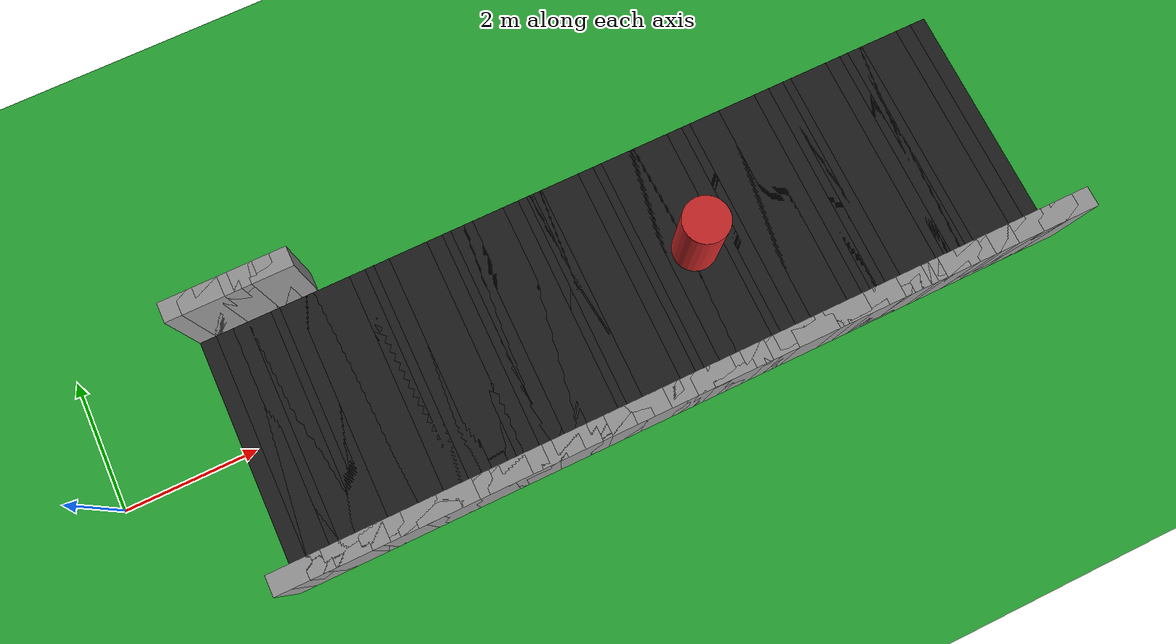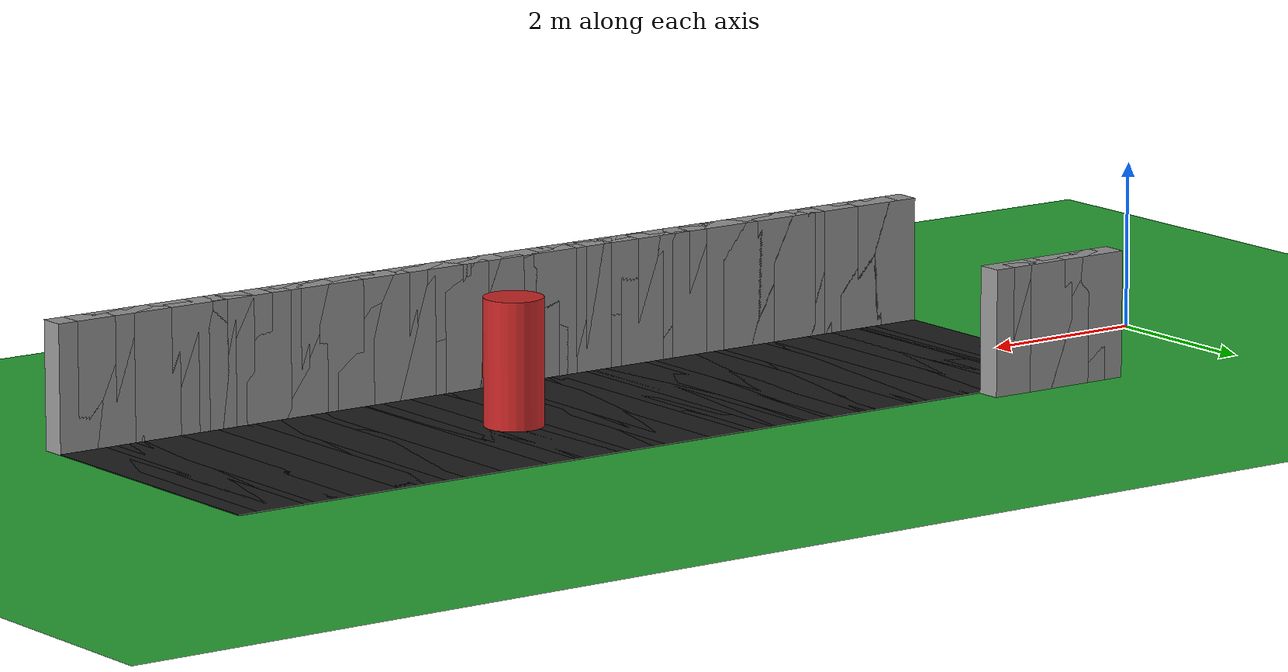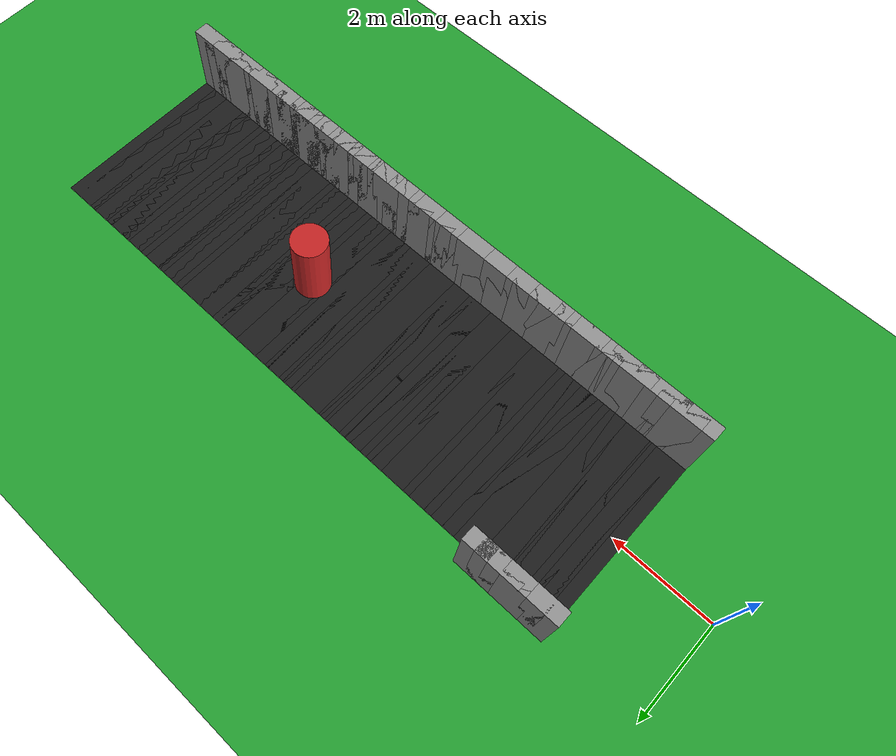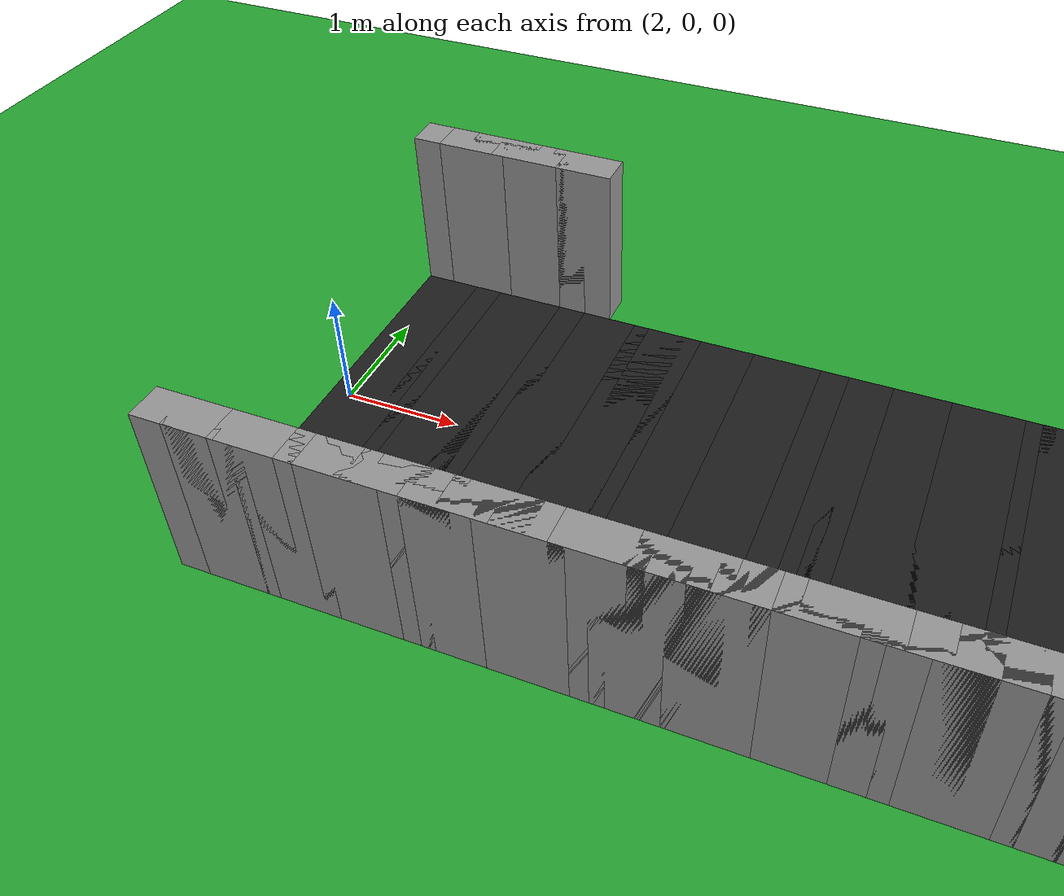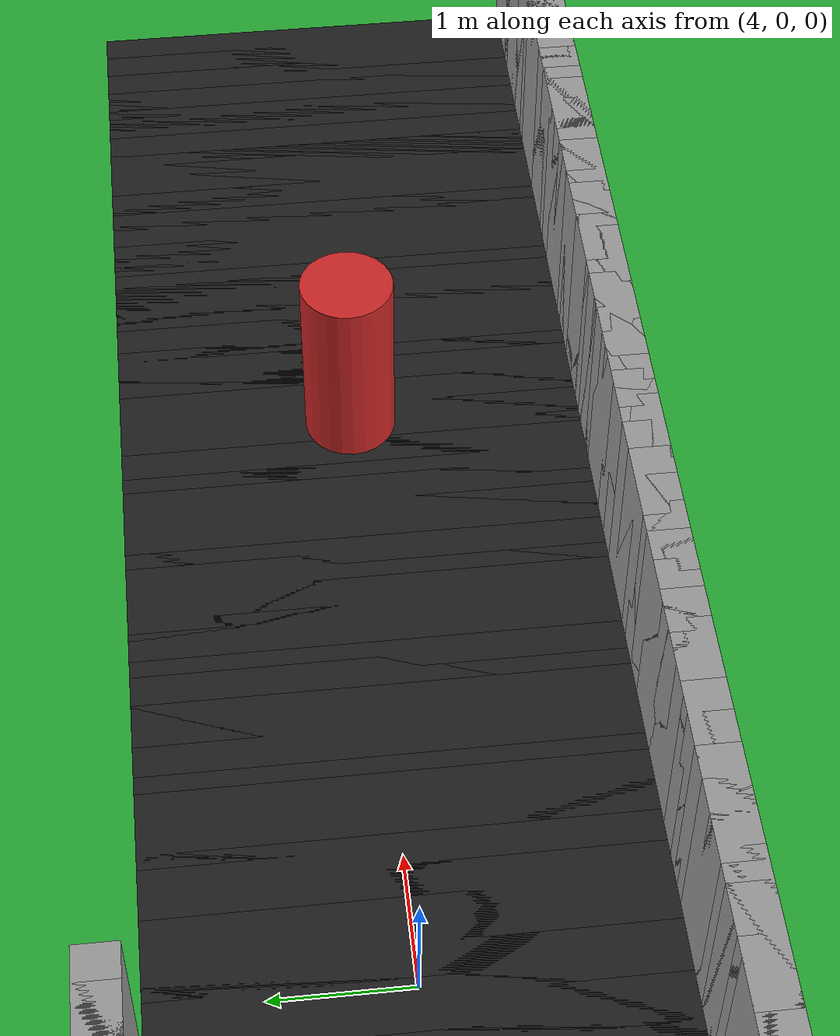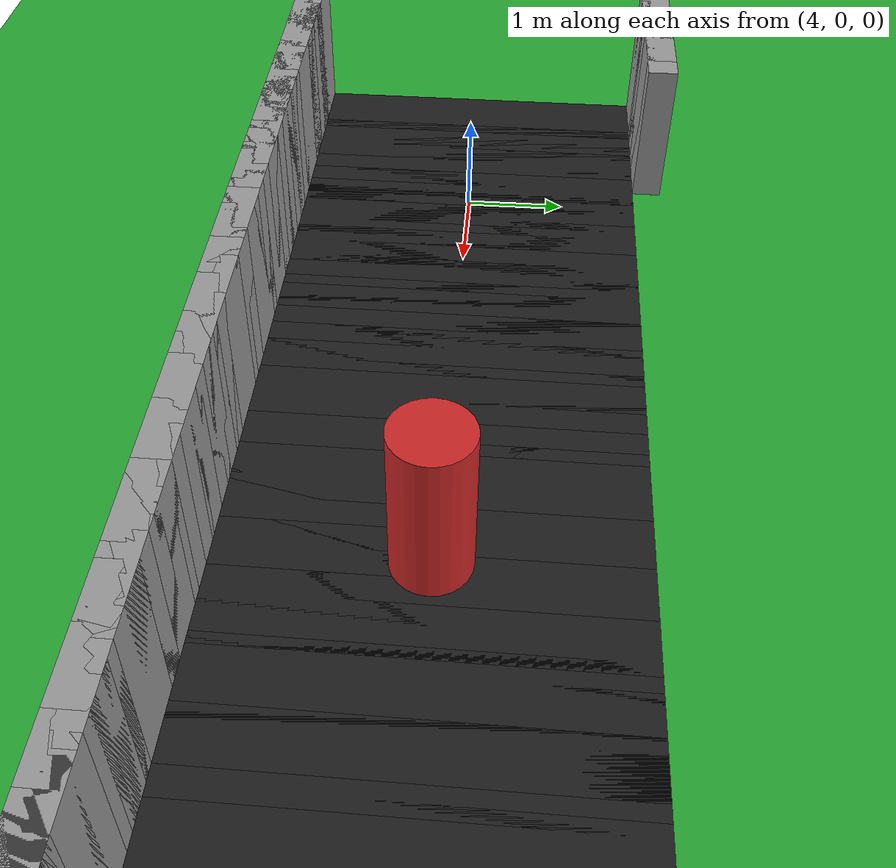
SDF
<sdf version="1.6">
 <world name="obstacle_tight">
  <include><uri>model://sun</uri></include>
  <model name="ground_plane">
   <static>true</static>
   <link name="link">
    <collision name="collision">
     <surface><friction><ode><mu>100</mu><mu2>50</mu2></ode></friction></surface>
     <geometry><plane><normal>0 0 1</normal><size>120 120</size></plane></geometry>
    </collision>
    <visual name="visual">
     <geometry><plane><normal>0 0 1</normal><size>120 120</size></plane></geometry>
     <material>
      <script><uri>file://media/materials/scripts/gazebo.material</uri><name>Gazebo/Green</name></script>
     </material>
    </visual>
   </link>
  </model>
  <model name="asphalt_8">
   <static>true</static>
   <pose>2.125 0.000 0.005 0 0 0.00000</pose>
   <link name="link">
    <visual name="visual">
     <geometry><box><size>0.610 3.600 0.010</size></box></geometry>
     <material>
      <script><uri>file://media/materials/scripts/gazebo.material</uri><name>Gazebo/Black</name></script>
     </material>
    </visual>
   </link>
  </model>
  <model name="curbL_8">
   <static>true</static>
   <pose>2.125 1.950 0.750 0 0 0.00000</pose>
   <link name="link">
    <collision name="collision"><geometry><box><size>0.610 0.300 1.500</size></box></geometry></collision>
    <visual name="visual">
     <geometry><box><size>0.610 0.300 1.500</size></box></geometry>
     <material>
      <script><uri>file://media/materials/scripts/gazebo.material</uri><name>Gazebo/Grey</name></script>
     </material>
    </visual>
   </link>
  </model>
  <model name="curbR_8">
   <static>true</static>
   <pose>2.125 -1.950 0.750 0 0 0.00000</pose>
   <link name="link">
    <collision name="collision"><geometry><box><size>0.610 0.300 1.500</size></box></geometry></collision>
    <visual name="visual">
     <geometry><box><size>0.610 0.300 1.500</size></box></geometry>
     <material>
      <script><uri>file://media/materials/scripts/gazebo.material</uri><name>Gazebo/Grey</name></script>
     </material>
    </visual>
   </link>
  </model>
  <model name="asphalt_9">
   <static>true</static>
   <pose>2.375 0.000 0.005 0 0 0.00000</pose>
   <link name="link">
    <visual name="visual">
     <geometry><box><size>0.610 3.600 0.010</size></box></geometry>
     <material>
      <script><uri>file://media/materials/scripts/gazebo.material</uri><name>Gazebo/Black</name></script>
     </material>
    </visual>
   </link>
  </model>
  <model name="curbL_9">
   <static>true</static>
   <pose>2.375 1.950 0.750 0 0 0.00000</pose>
   <link name="link">
    <collision name="collision"><geometry><box><size>0.610 0.300 1.500</size></box></geometry></collision>
    <visual name="visual">
     <geometry><box><size>0.610 0.300 1.500</size></box></geometry>
     <material>
      <script><uri>file://media/materials/scripts/gazebo.material</uri><name>Gazebo/Grey</name></script>
     </material>
    </visual>
   </link>
  </model>
  <model name="curbR_9">
   <static>true</static>
   <pose>2.375 -1.950 0.750 0 0 0.00000</pose>
   <link name="link">
    <collision name="collision"><geometry><box><size>0.610 0.300 1.500</size></box></geometry></collision>
    <visual name="visual">
     <geometry><box><size>0.610 0.300 1.500</size></box></geometry>
     <material>
      <script><uri>file://media/materials/scripts/gazebo.material</uri><name>Gazebo/Grey</name></script>
     </material>
    </visual>
   </link>
  </model>
  <model name="asphalt_10">
   <static>true</static>
   <pose>2.625 0.000 0.005 0 0 0.00000</pose>
   <link name="link">
    <visual name="visual">
     <geometry><box><size>0.610 3.600 0.010</size></box></geometry>
     <material>
      <script><uri>file://media/materials/scripts/gazebo.material</uri><name>Gazebo/Black</name></script>
     </material>
    </visual>
   </link>
  </model>
  <model name="curbL_10">
   <static>true</static>
   <pose>2.625 1.950 0.750 0 0 0.00000</pose>
   <link name="link">
    <collision name="collision"><geometry><box><size>0.610 0.300 1.500</size></box></geometry></collision>
    <visual name="visual">
     <geometry><box><size>0.610 0.300 1.500</size></box></geometry>
     <material>
      <script><uri>file://media/materials/scripts/gazebo.material</uri><name>Gazebo/Grey</name></script>
     </material>
    </visual>
   </link>
  </model>
  <model name="curbR_10">
   <static>true</static>
   <pose>2.625 -1.950 0.750 0 0 0.00000</pose>
   <link name="link">
    <collision name="collision"><geometry><box><size>0.610 0.300 1.500</size></box></geometry></collision>
    <visual name="visual">
     <geometry><box><size>0.610 0.300 1.500</size></box></geometry>
     <material>
      <script><uri>file://media/materials/scripts/gazebo.material</uri><name>Gazebo/Grey</name></script>
     </material>
    </visual>
   </link>
  </model>
  <model name="asphalt_11">
   <static>true</static>
   <pose>2.875 0.000 0.005 0 0 0.00000</pose>
   <link name="link">
    <visual name="visual">
     <geometry><box><size>0.610 3.600 0.010</size></box></geometry>
     <material>
      <script><uri>file://media/materials/scripts/gazebo.material</uri><name>Gazebo/Black</name></script>
     </material>
    </visual>
   </link>
  </model>
  <model name="curbL_11">
   <static>true</static>
   <pose>2.875 1.950 0.750 0 0 0.00000</pose>
   <link name="link">
    <collision name="collision"><geometry><box><size>0.610 0.300 1.500</size></box></geometry></collision>
    <visual name="visual">
     <geometry><box><size>0.610 0.300 1.500</size></box></geometry>
     <material>
      <script><uri>file://media/materials/scripts/gazebo.material</uri><name>Gazebo/Grey</name></script>
     </material>
    </visual>
   </link>
  </model>
  <model name="curbR_11">
   <static>true</static>
   <pose>2.875 -1.950 0.750 0 0 0.00000</pose>
   <link name="link">
    <collision name="collision"><geometry><box><size>0.610 0.300 1.500</size></box></geometry></collision>
    <visual name="visual">
     <geometry><box><size>0.610 0.300 1.500</size></box></geometry>
     <material>
      <script><uri>file://media/materials/scripts/gazebo.material</uri><name>Gazebo/Grey</name></script>
     </material>
    </visual>
   </link>
  </model>
  <model name="asphalt_12">
   <static>true</static>
   <pose>3.125 0.000 0.005 0 0 0.00000</pose>
   <link name="link">
    <visual name="visual">
     <geometry><box><size>0.610 3.600 0.010</size></box></geometry>
     <material>
      <script><uri>file://media/materials/scripts/gazebo.material</uri><name>Gazebo/Black</name></script>
     </material>
    </visual>
   </link>
  </model>
  <model name="curbL_12">
   <static>true</static>
   <pose>3.125 1.950 0.750 0 0 0.00000</pose>
   <link name="link">
    <collision name="collision"><geometry><box><size>0.610 0.300 1.500</size></box></geometry></collision>
    <visual name="visual">
     <geometry><box><size>0.610 0.300 1.500</size></box></geometry>
     <material>
      <script><uri>file://media/materials/scripts/gazebo.material</uri><name>Gazebo/Grey</name></script>
     </material>
    </visual>
   </link>
  </model>
  <model name="curbR_12">
   <static>true</static>
   <pose>3.125 -1.950 0.750 0 0 0.00000</pose>
   <link name="link">
    <collision name="collision"><geometry><box><size>0.610 0.300 1.500</size></box></geometry></collision>
    <visual name="visual">
     <geometry><box><size>0.610 0.300 1.500</size></box></geometry>
     <material>
      <script><uri>file://media/materials/scripts/gazebo.material</uri><name>Gazebo/Grey</name></script>
     </material>
    </visual>
   </link>
  </model>
  <model name="asphalt_13">
   <static>true</static>
   <pose>3.375 0.000 0.005 0 0 0.00000</pose>
   <link name="link">
    <visual name="visual">
     <geometry><box><size>0.610 3.600 0.010</size></box></geometry>
     <material>
      <script><uri>file://media/materials/scripts/gazebo.material</uri><name>Gazebo/Black</name></script>
     </material>
    </visual>
   </link>
  </model>
  <model name="curbL_13">
   <static>true</static>
   <pose>3.375 1.950 0.750 0 0 0.00000</pose>
   <link name="link">
    <collision name="collision"><geometry><box><size>0.610 0.300 1.500</size></box></geometry></collision>
    <visual name="visual">
     <geometry><box><size>0.610 0.300 1.500</size></box></geometry>
     <material>
      <script><uri>file://media/materials/scripts/gazebo.material</uri><name>Gazebo/Grey</name></script>
     </material>
    </visual>
   </link>
  </model>
  <model name="curbR_13">
   <static>true</static>
   <pose>3.375 -1.950 0.750 0 0 0.00000</pose>
   <link name="link">
    <collision name="collision"><geometry><box><size>0.610 0.300 1.500</size></box></geometry></collision>
    <visual name="visual">
     <geometry><box><size>0.610 0.300 1.500</size></box></geometry>
     <material>
      <script><uri>file://media/materials/scripts/gazebo.material</uri><name>Gazebo/Grey</name></script>
     </material>
    </visual>
   </link>
  </model>
  <model name="asphalt_14">
   <static>true</static>
   <pose>3.625 0.000 0.005 0 0 0.00000</pose>
   <link name="link">
    <visual name="visual">
     <geometry><box><size>0.610 3.600 0.010</size></box></geometry>
     <material>
      <script><uri>file://media/materials/scripts/gazebo.material</uri><name>Gazebo/Black</name></script>
     </material>
    </visual>
   </link>
  </model>
  <model name="curbR_14">
   <static>true</static>
   <pose>3.625 -1.950 0.750 0 0 0.00000</pose>
   <link name="link">
    <collision name="collision"><geometry><box><size>0.610 0.300 1.500</size></box></geometry></collision>
    <visual name="visual">
     <geometry><box><size>0.610 0.300 1.500</size></box></geometry>
     <material>
      <script><uri>file://media/materials/scripts/gazebo.material</uri><name>Gazebo/Grey</name></script>
     </material>
    </visual>
   </link>
  </model>
  <model name="asphalt_15">
   <static>true</static>
   <pose>3.875 0.000 0.005 0 0 0.00000</pose>
   <link name="link">
    <visual name="visual">
     <geometry><box><size>0.610 3.600 0.010</size></box></geometry>
     <material>
      <script><uri>file://media/materials/scripts/gazebo.material</uri><name>Gazebo/Black</name></script>
     </material>
    </visual>
   </link>
  </model>
  <model name="curbR_15">
   <static>true</static>
   <pose>3.875 -1.950 0.750 0 0 0.00000</pose>
   <link name="link">
    <collision name="collision"><geometry><box><size>0.610 0.300 1.500</size></box></geometry></collision>
    <visual name="visual">
     <geometry><box><size>0.610 0.300 1.500</size></box></geometry>
     <material>
      <script><uri>file://media/materials/scripts/gazebo.material</uri><name>Gazebo/Grey</name></script>
     </material>
    </visual>
   </link>
  </model>
  <model name="asphalt_16">
   <static>true</static>
   <pose>4.125 0.000 0.005 0 0 0.00000</pose>
   <link name="link">
    <visual name="visual">
     <geometry><box><size>0.610 3.600 0.010</size></box></geometry>
     <material>
      <script><uri>file://media/materials/scripts/gazebo.material</uri><name>Gazebo/Black</name></script>
     </material>
    </visual>
   </link>
  </model>
  <model name="curbR_16">
   <static>true</static>
   <pose>4.125 -1.950 0.750 0 0 0.00000</pose>
   <link name="link">
    <collision name="collision"><geometry><box><size>0.610 0.300 1.500</size></box></geometry></collision>
    <visual name="visual">
     <geometry><box><size>0.610 0.300 1.500</size></box></geometry>
     <material>
      <script><uri>file://media/materials/scripts/gazebo.material</uri><name>Gazebo/Grey</name></script>
     </material>
    </visual>
   </link>
  </model>
  <model name="asphalt_17">
   <static>true</static>
   <pose>4.375 0.000 0.005 0 0 0.00000</pose>
   <link name="link">
    <visual name="visual">
     <geometry><box><size>0.610 3.600 0.010</size></box></geometry>
     <material>
      <script><uri>file://media/materials/scripts/gazebo.material</uri><name>Gazebo/Black</name></script>
     </material>
    </visual>
   </link>
  </model>
  <model name="curbR_17">
   <static>true</static>
   <pose>4.375 -1.950 0.750 0 0 0.00000</pose>
   <link name="link">
    <collision name="collision"><geometry><box><size>0.610 0.300 1.500</size></box></geometry></collision>
    <visual name="visual">
     <geometry><box><size>0.610 0.300 1.500</size></box></geometry>
     <material>
      <script><uri>file://media/materials/scripts/gazebo.material</uri><name>Gazebo/Grey</name></script>
     </material>
    </visual>
   </link>
  </model>
  <model name="asphalt_18">
   <static>true</static>
   <pose>4.625 0.000 0.005 0 0 0.00000</pose>
   <link name="link">
    <visual name="visual">
     <geometry><box><size>0.610 3.600 0.010</size></box></geometry>
     <material>
      <script><uri>file://media/materials/scripts/gazebo.material</uri><name>Gazebo/Black</name></script>
     </material>
    </visual>
   </link>
  </model>
  <model name="curbR_18">
   <static>true</static>
   <pose>4.625 -1.950 0.750 0 0 0.00000</pose>
   <link name="link">
    <collision name="collision"><geometry><box><size>0.610 0.300 1.500</size></box></geometry></collision>
    <visual name="visual">
     <geometry><box><size>0.610 0.300 1.500</size></box></geometry>
     <material>
      <script><uri>file://media/materials/scripts/gazebo.material</uri><name>Gazebo/Grey</name></script>
     </material>
    </visual>
   </link>
  </model>
  <model name="asphalt_19">
   <static>true</static>
   <pose>4.875 0.000 0.005 0 0 0.00000</pose>
   <link name="link">
    <visual name="visual">
     <geometry><box><size>0.610 3.600 0.010</size></box></geometry>
     <material>
      <script><uri>file://media/materials/scripts/gazebo.material</uri><name>Gazebo/Black</name></script>
     </material>
    </visual>
   </link>
  </model>
  <model name="curbR_19">
   <static>true</static>
   <pose>4.875 -1.950 0.750 0 0 0.00000</pose>
   <link name="link">
    <collision name="collision"><geometry><box><size>0.610 0.300 1.500</size></box></geometry></collision>
    <visual name="visual">
     <geometry><box><size>0.610 0.300 1.500</size></box></geometry>
     <material>
      <script><uri>file://media/materials/scripts/gazebo.material</uri><name>Gazebo/Grey</name></script>
     </material>
    </visual>
   </link>
  </model>
  <model name="asphalt_20">
   <static>true</static>
   <pose>5.125 0.000 0.005 0 0 0.00000</pose>
   <link name="link">
    <visual name="visual">
     <geometry><box><size>0.610 3.600 0.010</size></box></geometry>
     <material>
      <script><uri>file://media/materials/scripts/gazebo.material</uri><name>Gazebo/Black</name></script>
     </material>
    </visual>
   </link>
  </model>
  <model name="curbR_20">
   <static>true</static>
   <pose>5.125 -1.950 0.750 0 0 0.00000</pose>
   <link name="link">
    <collision name="collision"><geometry><box><size>0.610 0.300 1.500</size></box></geometry></collision>
    <visual name="visual">
     <geometry><box><size>0.610 0.300 1.500</size></box></geometry>
     <material>
      <script><uri>file://media/materials/scripts/gazebo.material</uri><name>Gazebo/Grey</name></script>
     </material>
    </visual>
   </link>
  </model>
  <model name="asphalt_21">
   <static>true</static>
   <pose>5.375 0.000 0.005 0 0 0.00000</pose>
   <link name="link">
    <visual name="visual">
     <geometry><box><size>0.610 3.600 0.010</size></box></geometry>
     <material>
      <script><uri>file://media/materials/scripts/gazebo.material</uri><name>Gazebo/Black</name></script>
     </material>
    </visual>
   </link>
  </model>
  <model name="curbR_21">
   <static>true</static>
   <pose>5.375 -1.950 0.750 0 0 0.00000</pose>
   <link name="link">
    <collision name="collision"><geometry><box><size>0.610 0.300 1.500</size></box></geometry></collision>
    <visual name="visual">
     <geometry><box><size>0.610 0.300 1.500</size></box></geometry>
     <material>
      <script><uri>file://media/materials/scripts/gazebo.material</uri><name>Gazebo/Grey</name></script>
     </material>
    </visual>
   </link>
  </model>
  <model name="asphalt_22">
   <static>true</static>
   <pose>5.625 0.000 0.005 0 0 0.00000</pose>
   <link name="link">
    <visual name="visual">
     <geometry><box><size>0.610 3.600 0.010</size></box></geometry>
     <material>
      <script><uri>file://media/materials/scripts/gazebo.material</uri><name>Gazebo/Black</name></script>
     </material>
    </visual>
   </link>
  </model>
  <model name="curbR_22">
   <static>true</static>
   <pose>5.625 -1.950 0.750 0 0 0.00000</pose>
   <link name="link">
    <collision name="collision"><geometry><box><size>0.610 0.300 1.500</size></box></geometry></collision>
    <visual name="visual">
     <geometry><box><size>0.610 0.300 1.500</size></box></geometry>
     <material>
      <script><uri>file://media/materials/scripts/gazebo.material</uri><name>Gazebo/Grey</name></script>
     </material>
    </visual>
   </link>
  </model>
  <model name="asphalt_23">
   <static>true</static>
   <pose>5.875 0.000 0.005 0 0 0.00000</pose>
   <link name="link">
    <visual name="visual">
     <geometry><box><size>0.610 3.600 0.010</size></box></geometry>
     <material>
      <script><uri>file://media/materials/scripts/gazebo.material</uri><name>Gazebo/Black</name></script>
     </material>
    </visual>
   </link>
  </model>
  <model name="curbR_23">
   <static>true</static>
   <pose>5.875 -1.950 0.750 0 0 0.00000</pose>
   <link name="link">
    <collision name="collision"><geometry><box><size>0.610 0.300 1.500</size></box></geometry></collision>
    <visual name="visual">
     <geometry><box><size>0.610 0.300 1.500</size></box></geometry>
     <material>
      <script><uri>file://media/materials/scripts/gazebo.material</uri><name>Gazebo/Grey</name></script>
     </material>
    </visual>
   </link>
  </model>
  <model name="asphalt_24">
   <static>true</static>
   <pose>6.125 0.000 0.005 0 0 0.00000</pose>
   <link name="link">
    <visual name="visual">
     <geometry><box><size>0.610 3.600 0.010</size></box></geometry>
     <material>
      <script><uri>file://media/materials/scripts/gazebo.material</uri><name>Gazebo/Black</name></script>
     </material>
    </visual>
   </link>
  </model>
  <model name="curbR_24">
   <static>true</static>
   <pose>6.125 -1.950 0.750 0 0 0.00000</pose>
   <link name="link">
    <collision name="collision"><geometry><box><size>0.610 0.300 1.500</size></box></geometry></collision>
    <visual name="visual">
     <geometry><box><size>0.610 0.300 1.500</size></box></geometry>
     <material>
      <script><uri>file://media/materials/scripts/gazebo.material</uri><name>Gazebo/Grey</name></script>
     </material>
    </visual>
   </link>
  </model>
  <model name="asphalt_25">
   <static>true</static>
   <pose>6.375 0.000 0.005 0 0 0.00000</pose>
   <link name="link">
    <visual name="visual">
     <geometry><box><size>0.610 3.600 0.010</size></box></geometry>
     <material>
      <script><uri>file://media/materials/scripts/gazebo.material</uri><name>Gazebo/Black</name></script>
     </material>
    </visual>
   </link>
  </model>
  <model name="curbR_25">
   <static>true</static>
   <pose>6.375 -1.950 0.750 0 0 0.00000</pose>
   <link name="link">
    <collision name="collision"><geometry><box><size>0.610 0.300 1.500</size></box></geometry></collision>
    <visual name="visual">
     <geometry><box><size>0.610 0.300 1.500</size></box></geometry>
     <material>
      <script><uri>file://media/materials/scripts/gazebo.material</uri><name>Gazebo/Grey</name></script>
     </material>
    </visual>
   </link>
  </model>
  <model name="asphalt_26">
   <static>true</static>
   <pose>6.625 0.000 0.005 0 0 0.00000</pose>
   <link name="link">
    <visual name="visual">
     <geometry><box><size>0.610 3.600 0.010</size></box></geometry>
     <material>
      <script><uri>file://media/materials/scripts/gazebo.material</uri><name>Gazebo/Black</name></script>
     </material>
    </visual>
   </link>
  </model>
  <model name="curbR_26">
   <static>true</static>
   <pose>6.625 -1.950 0.750 0 0 0.00000</pose>
   <link name="link">
    <collision name="collision"><geometry><box><size>0.610 0.300 1.500</size></box></geometry></collision>
    <visual name="visual">
     <geometry><box><size>0.610 0.300 1.500</size></box></geometry>
     <material>
      <script><uri>file://media/materials/scripts/gazebo.material</uri><name>Gazebo/Grey</name></script>
     </material>
    </visual>
   </link>
  </model>
  <model name="asphalt_27">
   <static>true</static>
   <pose>6.875 0.000 0.005 0 0 0.00000</pose>
   <link name="link">
    <visual name="visual">
     <geometry><box><size>0.610 3.600 0.010</size></box></geometry>
     <material>
      <script><uri>file://media/materials/scripts/gazebo.material</uri><name>Gazebo/Black</name></script>
     </material>
    </visual>
   </link>
  </model>
  <model name="curbR_27">
   <static>true</static>
   <pose>6.875 -1.950 0.750 0 0 0.00000</pose>
   <link name="link">
    <collision name="collision"><geometry><box><size>0.610 0.300 1.500</size></box></geometry></collision>
    <visual name="visual">
     <geometry><box><size>0.610 0.300 1.500</size></box></geometry>
     <material>
      <script><uri>file://media/materials/scripts/gazebo.material</uri><name>Gazebo/Grey</name></script>
     </material>
    </visual>
   </link>
  </model>
  <model name="asphalt_28">
   <static>true</static>
   <pose>7.125 0.000 0.005 0 0 0.00000</pose>
   <link name="link">
    <visual name="visual">
     <geometry><box><size>0.610 3.600 0.010</size></box></geometry>
     <material>
      <script><uri>file://media/materials/scripts/gazebo.material</uri><name>Gazebo/Black</name></script>
     </material>
    </visual>
   </link>
  </model>
  <model name="curbR_28">
   <static>true</static>
   <pose>7.125 -1.950 0.750 0 0 0.00000</pose>
   <link name="link">
    <collision name="collision"><geometry><box><size>0.610 0.300 1.500</size></box></geometry></collision>
    <visual name="visual">
     <geometry><box><size>0.610 0.300 1.500</size></box></geometry>
     <material>
      <script><uri>file://media/materials/scripts/gazebo.material</uri><name>Gazebo/Grey</name></script>
     </material>
    </visual>
   </link>
  </model>
  <model name="asphalt_29">
   <static>true</static>
   <pose>7.375 0.000 0.005 0 0 0.00000</pose>
   <link name="link">
    <visual name="visual">
     <geometry><box><size>0.610 3.600 0.010</size></box></geometry>
     <material>
      <script><uri>file://media/materials/scripts/gazebo.material</uri><name>Gazebo/Black</name></script>
     </material>
    </visual>
   </link>
  </model>
  <model name="curbR_29">
   <static>true</static>
   <pose>7.375 -1.950 0.750 0 0 0.00000</pose>
   <link name="link">
    <collision name="collision"><geometry><box><size>0.610 0.300 1.500</size></box></geometry></collision>
    <visual name="visual">
     <geometry><box><size>0.610 0.300 1.500</size></box></geometry>
     <material>
      <script><uri>file://media/materials/scripts/gazebo.material</uri><name>Gazebo/Grey</name></script>
     </material>
    </visual>
   </link>
  </model>
  <model name="asphalt_30">
   <static>true</static>
   <pose>7.625 0.000 0.005 0 0 0.00000</pose>
   <link name="link">
    <visual name="visual">
     <geometry><box><size>0.610 3.600 0.010</size></box></geometry>
     <material>
      <script><uri>file://media/materials/scripts/gazebo.material</uri><name>Gazebo/Black</name></script>
     </material>
    </visual>
   </link>
  </model>
  <model name="curbR_30">
   <static>true</static>
   <pose>7.625 -1.950 0.750 0 0 0.00000</pose>
   <link name="link">
    <collision name="collision"><geometry><box><size>0.610 0.300 1.500</size></box></geometry></collision>
    <visual name="visual">
     <geometry><box><size>0.610 0.300 1.500</size></box></geometry>
     <material>
      <script><uri>file://media/materials/scripts/gazebo.material</uri><name>Gazebo/Grey</name></script>
     </material>
    </visual>
   </link>
  </model>
  <model name="asphalt_31">
   <static>true</static>
   <pose>7.875 0.000 0.005 0 0 0.00000</pose>
   <link name="link">
    <visual name="visual">
     <geometry><box><size>0.610 3.600 0.010</size></box></geometry>
     <material>
      <script><uri>file://media/materials/scripts/gazebo.material</uri><name>Gazebo/Black</name></script>
     </material>
    </visual>
   </link>
  </model>
  <model name="curbR_31">
   <static>true</static>
   <pose>7.875 -1.950 0.750 0 0 0.00000</pose>
   <link name="link">
    <collision name="collision"><geometry><box><size>0.610 0.300 1.500</size></box></geometry></collision>
    <visual name="visual">
     <geometry><box><size>0.610 0.300 1.500</size></box></geometry>
     <material>
      <script><uri>file://media/materials/scripts/gazebo.material</uri><name>Gazebo/Grey</name></script>
     </material>
    </visual>
   </link>
  </model>
  <model name="asphalt_32">
   <static>true</static>
   <pose>8.125 0.000 0.005 0 0 0.00000</pose>
   <link name="link">
    <visual name="visual">
     <geometry><box><size>0.610 3.600 0.010</size></box></geometry>
     <material>
      <script><uri>file://media/materials/scripts/gazebo.material</uri><name>Gazebo/Black</name></script>
     </material>
    </visual>
   </link>
  </model>
  <model name="curbR_32">
   <static>true</static>
   <pose>8.125 -1.950 0.750 0 0 0.00000</pose>
   <link name="link">
    <collision name="collision"><geometry><box><size>0.610 0.300 1.500</size></box></geometry></collision>
    <visual name="visual">
     <geometry><box><size>0.610 0.300 1.500</size></box></geometry>
     <material>
      <script><uri>file://media/materials/scripts/gazebo.material</uri><name>Gazebo/Grey</name></script>
     </material>
    </visual>
   </link>
  </model>
  <model name="asphalt_33">
   <static>true</static>
   <pose>8.375 0.000 0.005 0 0 0.00000</pose>
   <link name="link">
    <visual name="visual">
     <geometry><box><size>0.610 3.600 0.010</size></box></geometry>
     <material>
      <script><uri>file://media/materials/scripts/gazebo.material</uri><name>Gazebo/Black</name></script>
     </material>
    </visual>
   </link>
  </model>
  <model name="curbR_33">
   <static>true</static>
   <pose>8.375 -1.950 0.750 0 0 0.00000</pose>
   <link name="link">
    <collision name="collision"><geometry><box><size>0.610 0.300 1.500</size></box></geometry></collision>
    <visual name="visual">
     <geometry><box><size>0.610 0.300 1.500</size></box></geometry>
     <material>
      <script><uri>file://media/materials/scripts/gazebo.material</uri><name>Gazebo/Grey</name></script>
     </material>
    </visual>
   </link>
  </model>
  <model name="asphalt_34">
   <static>true</static>
   <pose>8.625 0.000 0.005 0 0 0.00000</pose>
   <link name="link">
    <visual name="visual">
     <geometry><box><size>0.610 3.600 0.010</size></box></geometry>
     <material>
      <script><uri>file://media/materials/scripts/gazebo.material</uri><name>Gazebo/Black</name></script>
     </material>
    </visual>
   </link>
  </model>
  <model name="curbR_34">
   <static>true</static>
   <pose>8.625 -1.950 0.750 0 0 0.00000</pose>
   <link name="link">
    <collision name="collision"><geometry><box><size>0.610 0.300 1.500</size></box></geometry></collision>
    <visual name="visual">
     <geometry><box><size>0.610 0.300 1.500</size></box></geometry>
     <material>
      <script><uri>file://media/materials/scripts/gazebo.material</uri><name>Gazebo/Grey</name></script>
     </material>
    </visual>
   </link>
  </model>
  <model name="asphalt_35">
   <static>true</static>
   <pose>8.875 0.000 0.005 0 0 0.00000</pose>
   <link name="link">
    <visual name="visual">
     <geometry><box><size>0.610 3.600 0.010</size></box></geometry>
     <material>
      <script><uri>file://media/materials/scripts/gazebo.material</uri><name>Gazebo/Black</name></script>
     </material>
    </visual>
   </link>
  </model>
  <model name="curbR_35">
   <static>true</static>
   <pose>8.875 -1.950 0.750 0 0 0.00000</pose>
   <link name="link">
    <collision name="collision"><geometry><box><size>0.610 0.300 1.500</size></box></geometry></collision>
    <visual name="visual">
     <geometry><box><size>0.610 0.300 1.500</size></box></geometry>
     <material>
      <script><uri>file://media/materials/scripts/gazebo.material</uri><name>Gazebo/Grey</name></script>
     </material>
    </visual>
   </link>
  </model>
  <model name="asphalt_36">
   <static>true</static>
   <pose>9.125 0.000 0.005 0 0 0.00000</pose>
   <link name="link">
    <visual name="visual">
     <geometry><box><size>0.610 3.600 0.010</size></box></geometry>
     <material>
      <script><uri>file://media/materials/scripts/gazebo.material</uri><name>Gazebo/Black</name></script>
     </material>
    </visual>
   </link>
  </model>
  <model name="curbR_36">
   <static>true</static>
   <pose>9.125 -1.950 0.750 0 0 0.00000</pose>
   <link name="link">
    <collision name="collision"><geometry><box><size>0.610 0.300 1.500</size></box></geometry></collision>
    <visual name="visual">
     <geometry><box><size>0.610 0.300 1.500</size></box></geometry>
     <material>
      <script><uri>file://media/materials/scripts/gazebo.material</uri><name>Gazebo/Grey</name></script>
     </material>
    </visual>
   </link>
  </model>
  <model name="asphalt_37">
   <static>true</static>
   <pose>9.375 0.000 0.005 0 0 0.00000</pose>
   <link name="link">
    <visual name="visual">
     <geometry><box><size>0.610 3.600 0.010</size></box></geometry>
     <material>
      <script><uri>file://media/materials/scripts/gazebo.material</uri><name>Gazebo/Black</name></script>
     </material>
    </visual>
   </link>
  </model>
  <model name="curbR_37">
   <static>true</static>
   <pose>9.375 -1.950 0.750 0 0 0.00000</pose>
   <link name="link">
    <collision name="collision"><geometry><box><size>0.610 0.300 1.500</size></box></geometry></collision>
    <visual name="visual">
     <geometry><box><size>0.610 0.300 1.500</size></box></geometry>
     <material>
      <script><uri>file://media/materials/scripts/gazebo.material</uri><name>Gazebo/Grey</name></script>
     </material>
    </visual>
   </link>
  </model>
  <model name="asphalt_38">
   <static>true</static>
   <pose>9.625 0.000 0.005 0 0 0.00000</pose>
   <link name="link">
    <visual name="visual">
     <geometry><box><size>0.610 3.600 0.010</size></box></geometry>
     <material>
      <script><uri>file://media/materials/scripts/gazebo.material</uri><name>Gazebo/Black</name></script>
     </material>
    </visual>
   </link>
  </model>
  <model name="curbR_38">
   <static>true</static>
   <pose>9.625 -1.950 0.750 0 0 0.00000</pose>
   <link name="link">
    <collision name="collision"><geometry><box><size>0.610 0.300 1.500</size></box></geometry></collision>
    <visual name="visual">
     <geometry><box><size>0.610 0.300 1.500</size></box></geometry>
     <material>
      <script><uri>file://media/materials/scripts/gazebo.material</uri><name>Gazebo/Grey</name></script>
     </material>
    </visual>
   </link>
  </model>
  <model name="asphalt_39">
   <static>true</static>
   <pose>9.875 0.000 0.005 0 0 0.00000</pose>
   <link name="link">
    <visual name="visual">
     <geometry><box><size>0.610 3.600 0.010</size></box></geometry>
     <material>
      <script><uri>file://media/materials/scripts/gazebo.material</uri><name>Gazebo/Black</name></script>
     </material>
    </visual>
   </link>
  </model>
  <model name="curbR_39">
   <static>true</static>
   <pose>9.875 -1.950 0.750 0 0 0.00000</pose>
   <link name="link">
    <collision name="collision"><geometry><box><size>0.610 0.300 1.500</size></box></geometry></collision>
    <visual name="visual">
     <geometry><box><size>0.610 0.300 1.500</size></box></geometry>
     <material>
      <script><uri>file://media/materials/scripts/gazebo.material</uri><name>Gazebo/Grey</name></script>
     </material>
    </visual>
   </link>
  </model>
  <model name="asphalt_40">
   <static>true</static>
   <pose>10.125 0.000 0.005 0 0 0.00000</pose>
   <link name="link">
    <visual name="visual">
     <geometry><box><size>0.610 3.600 0.010</size></box></geometry>
     <material>
      <script><uri>file://media/materials/scripts/gazebo.material</uri><name>Gazebo/Black</name></script>
     </material>
    </visual>
   </link>
  </model>
  <model name="curbR_40">
   <static>true</static>
   <pose>10.125 -1.950 0.750 0 0 0.00000</pose>
   <link name="link">
    <collision name="collision"><geometry><box><size>0.610 0.300 1.500</size></box></geometry></collision>
    <visual name="visual">
     <geometry><box><size>0.610 0.300 1.500</size></box></geometry>
     <material>
      <script><uri>file://media/materials/scripts/gazebo.material</uri><name>Gazebo/Grey</name></script>
     </material>
    </visual>
   </link>
  </model>
  <model name="asphalt_41">
   <static>true</static>
   <pose>10.375 0.000 0.005 0 0 0.00000</pose>
   <link name="link">
    <visual name="visual">
     <geometry><box><size>0.610 3.600 0.010</size></box></geometry>
     <material>
      <script><uri>file://media/materials/scripts/gazebo.material</uri><name>Gazebo/Black</name></script>
     </material>
    </visual>
   </link>
  </model>
  <model name="curbR_41">
   <static>true</static>
   <pose>10.375 -1.950 0.750 0 0 0.00000</pose>
   <link name="link">
    <collision name="collision"><geometry><box><size>0.610 0.300 1.500</size></box></geometry></collision>
    <visual name="visual">
     <geometry><box><size>0.610 0.300 1.500</size></box></geometry>
     <material>
      <script><uri>file://media/materials/scripts/gazebo.material</uri><name>Gazebo/Grey</name></script>
     </material>
    </visual>
   </link>
  </model>
  <model name="asphalt_42">
   <static>true</static>
   <pose>10.625 0.000 0.005 0 0 0.00000</pose>
   <link name="link">
    <visual name="visual">
     <geometry><box><size>0.610 3.600 0.010</size></box></geometry>
     <material>
      <script><uri>file://media/materials/scripts/gazebo.material</uri><name>Gazebo/Black</name></script>
     </material>
    </visual>
   </link>
  </model>
  <model name="curbR_42">
   <static>true</static>
   <pose>10.625 -1.950 0.750 0 0 0.00000</pose>
   <link name="link">
    <collision name="collision"><geometry><box><size>0.610 0.300 1.500</size></box></geometry></collision>
    <visual name="visual">
     <geometry><box><size>0.610 0.300 1.500</size></box></geometry>
     <material>
      <script><uri>file://media/materials/scripts/gazebo.material</uri><name>Gazebo/Grey</name></script>
     </material>
    </visual>
   </link>
  </model>
  <model name="asphalt_43">
   <static>true</static>
   <pose>10.875 0.000 0.005 0 0 0.00000</pose>
   <link name="link">
    <visual name="visual">
     <geometry><box><size>0.610 3.600 0.010</size></box></geometry>
     <material>
      <script><uri>file://media/materials/scripts/gazebo.material</uri><name>Gazebo/Black</name></script>
     </material>
    </visual>
   </link>
  </model>
  <model name="curbR_43">
   <static>true</static>
   <pose>10.875 -1.950 0.750 0 0 0.00000</pose>
   <link name="link">
    <collision name="collision"><geometry><box><size>0.610 0.300 1.500</size></box></geometry></collision>
    <visual name="visual">
     <geometry><box><size>0.610 0.300 1.500</size></box></geometry>
     <material>
      <script><uri>file://media/materials/scripts/gazebo.material</uri><name>Gazebo/Grey</name></script>
     </material>
    </visual>
   </link>
  </model>
  <model name="asphalt_44">
   <static>true</static>
   <pose>11.125 0.000 0.005 0 0 0.00000</pose>
   <link name="link">
    <visual name="visual">
     <geometry><box><size>0.610 3.600 0.010</size></box></geometry>
     <material>
      <script><uri>file://media/materials/scripts/gazebo.material</uri><name>Gazebo/Black</name></script>
     </material>
    </visual>
   </link>
  </model>
  <model name="curbR_44">
   <static>true</static>
   <pose>11.125 -1.950 0.750 0 0 0.00000</pose>
   <link name="link">
    <collision name="collision"><geometry><box><size>0.610 0.300 1.500</size></box></geometry></collision>
    <visual name="visual">
     <geometry><box><size>0.610 0.300 1.500</size></box></geometry>
     <material>
      <script><uri>file://media/materials/scripts/gazebo.material</uri><name>Gazebo/Grey</name></script>
     </material>
    </visual>
   </link>
  </model>
  <model name="asphalt_45">
   <static>true</static>
   <pose>11.375 0.000 0.005 0 0 0.00000</pose>
   <link name="link">
    <visual name="visual">
     <geometry><box><size>0.610 3.600 0.010</size></box></geometry>
     <material>
      <script><uri>file://media/materials/scripts/gazebo.material</uri><name>Gazebo/Black</name></script>
     </material>
    </visual>
   </link>
  </model>
  <model name="curbR_45">
   <static>true</static>
   <pose>11.375 -1.950 0.750 0 0 0.00000</pose>
   <link name="link">
    <collision name="collision"><geometry><box><size>0.610 0.300 1.500</size></box></geometry></collision>
    <visual name="visual">
     <geometry><box><size>0.610 0.300 1.500</size></box></geometry>
     <material>
      <script><uri>file://media/materials/scripts/gazebo.material</uri><name>Gazebo/Grey</name></script>
     </material>
    </visual>
   </link>
  </model>
  <model name="asphalt_46">
   <static>true</static>
   <pose>11.625 0.000 0.005 0 0 0.00000</pose>
   <link name="link">
    <visual name="visual">
     <geometry><box><size>0.610 3.600 0.010</size></box></geometry>
     <material>
      <script><uri>file://media/materials/scripts/gazebo.material</uri><name>Gazebo/Black</name></script>
     </material>
    </visual>
   </link>
  </model>
  <model name="curbR_46">
   <static>true</static>
   <pose>11.625 -1.950 0.750 0 0 0.00000</pose>
   <link name="link">
    <collision name="collision"><geometry><box><size>0.610 0.300 1.500</size></box></geometry></collision>
    <visual name="visual">
     <geometry><box><size>0.610 0.300 1.500</size></box></geometry>
     <material>
      <script><uri>file://media/materials/scripts/gazebo.material</uri><name>Gazebo/Grey</name></script>
     </material>
    </visual>
   </link>
  </model>
  <model name="asphalt_47">
   <static>true</static>
   <pose>11.875 0.000 0.005 0 0 0.00000</pose>
   <link name="link">
    <visual name="visual">
     <geometry><box><size>0.610 3.600 0.010</size></box></geometry>
     <material>
      <script><uri>file://media/materials/scripts/gazebo.material</uri><name>Gazebo/Black</name></script>
     </material>
    </visual>
   </link>
  </model>
  <model name="curbR_47">
   <static>true</static>
   <pose>11.875 -1.950 0.750 0 0 0.00000</pose>
   <link name="link">
    <collision name="collision"><geometry><box><size>0.610 0.300 1.500</size></box></geometry></collision>
    <visual name="visual">
     <geometry><box><size>0.610 0.300 1.500</size></box></geometry>
     <material>
      <script><uri>file://media/materials/scripts/gazebo.material</uri><name>Gazebo/Grey</name></script>
     </material>
    </visual>
   </link>
  </model>
  <model name="asphalt_48">
   <static>true</static>
   <pose>12.125 0.000 0.005 0 0 0.00000</pose>
   <link name="link">
    <visual name="visual">
     <geometry><box><size>0.610 3.600 0.010</size></box></geometry>
     <material>
      <script><uri>file://media/materials/scripts/gazebo.material</uri><name>Gazebo/Black</name></script>
     </material>
    </visual>
   </link>
  </model>
  <model name="curbR_48">
   <static>true</static>
   <pose>12.125 -1.950 0.750 0 0 0.00000</pose>
   <link name="link">
    <collision name="collision"><geometry><box><size>0.610 0.300 1.500</size></box></geometry></collision>
    <visual name="visual">
     <geometry><box><size>0.610 0.300 1.500</size></box></geometry>
     <material>
      <script><uri>file://media/materials/scripts/gazebo.material</uri><name>Gazebo/Grey</name></script>
     </material>
    </visual>
   </link>
  </model>
  <model name="asphalt_49">
   <static>true</static>
   <pose>12.375 0.000 0.005 0 0 0.00000</pose>
   <link name="link">
    <visual name="visual">
     <geometry><box><size>0.610 3.600 0.010</size></box></geometry>
     <material>
      <script><uri>file://media/materials/scripts/gazebo.material</uri><name>Gazebo/Black</name></script>
     </material>
    </visual>
   </link>
  </model>
  <model name="curbR_49">
   <static>true</static>
   <pose>12.375 -1.950 0.750 0 0 0.00000</pose>
   <link name="link">
    <collision name="collision"><geometry><box><size>0.610 0.300 1.500</size></box></geometry></collision>
    <visual name="visual">
     <geometry><box><size>0.610 0.300 1.500</size></box></geometry>
     <material>
      <script><uri>file://media/materials/scripts/gazebo.material</uri><name>Gazebo/Grey</name></script>
     </material>
    </visual>
   </link>
  </model>
  <model name="asphalt_50">
   <static>true</static>
   <pose>12.625 0.000 0.005 0 0 0.00000</pose>
   <link name="link">
    <visual name="visual">
     <geometry><box><size>0.610 3.600 0.010</size></box></geometry>
     <material>
      <script><uri>file://media/materials/scripts/gazebo.material</uri><name>Gazebo/Black</name></script>
     </material>
    </visual>
   </link>
  </model>
  <model name="curbR_50">
   <static>true</static>
   <pose>12.625 -1.950 0.750 0 0 0.00000</pose>
   <link name="link">
    <collision name="collision"><geometry><box><size>0.610 0.300 1.500</size></box></geometry></collision>
    <visual name="visual">
     <geometry><box><size>0.610 0.300 1.500</size></box></geometry>
     <material>
      <script><uri>file://media/materials/scripts/gazebo.material</uri><name>Gazebo/Grey</name></script>
     </material>
    </visual>
   </link>
  </model>
  <model name="asphalt_51">
   <static>true</static>
   <pose>12.875 0.000 0.005 0 0 0.00000</pose>
   <link name="link">
    <visual name="visual">
     <geometry><box><size>0.610 3.600 0.010</size></box></geometry>
     <material>
      <script><uri>file://media/materials/scripts/gazebo.material</uri><name>Gazebo/Black</name></script>
     </material>
    </visual>
   </link>
  </model>
  <model name="curbR_51">
   <static>true</static>
   <pose>12.875 -1.950 0.750 0 0 0.00000</pose>
   <link name="link">
    <collision name="collision"><geometry><box><size>0.610 0.300 1.500</size></box></geometry></collision>
    <visual name="visual">
     <geometry><box><size>0.610 0.300 1.500</size></box></geometry>
     <material>
      <script><uri>file://media/materials/scripts/gazebo.material</uri><name>Gazebo/Grey</name></script>
     </material>
    </visual>
   </link>
  </model>
  <model name="asphalt_52">
   <static>true</static>
   <pose>13.125 0.000 0.005 0 0 0.00000</pose>
   <link name="link">
    <visual name="visual">
     <geometry><box><size>0.610 3.600 0.010</size></box></geometry>
     <material>
      <script><uri>file://media/materials/scripts/gazebo.material</uri><name>Gazebo/Black</name></script>
     </material>
    </visual>
   </link>
  </model>
  <model name="curbR_52">
   <static>true</static>
   <pose>13.125 -1.950 0.750 0 0 0.00000</pose>
   <link name="link">
    <collision name="collision"><geometry><box><size>0.610 0.300 1.500</size></box></geometry></collision>
    <visual name="visual">
     <geometry><box><size>0.610 0.300 1.500</size></box></geometry>
     <material>
      <script><uri>file://media/materials/scripts/gazebo.material</uri><name>Gazebo/Grey</name></script>
     </material>
    </visual>
   </link>
  </model>
  <model name="asphalt_53">
   <static>true</static>
   <pose>13.375 0.000 0.005 0 0 0.00000</pose>
   <link name="link">
    <visual name="visual">
     <geometry><box><size>0.610 3.600 0.010</size></box></geometry>
     <material>
      <script><uri>file://media/materials/scripts/gazebo.material</uri><name>Gazebo/Black</name></script>
     </material>
    </visual>
   </link>
  </model>
  <model name="curbR_53">
   <static>true</static>
   <pose>13.375 -1.950 0.750 0 0 0.00000</pose>
   <link name="link">
    <collision name="collision"><geometry><box><size>0.610 0.300 1.500</size></box></geometry></collision>
    <visual name="visual">
     <geometry><box><size>0.610 0.300 1.500</size></box></geometry>
     <material>
      <script><uri>file://media/materials/scripts/gazebo.material</uri><name>Gazebo/Grey</name></script>
     </material>
    </visual>
   </link>
  </model>
  <model name="asphalt_54">
   <static>true</static>
   <pose>13.625 0.000 0.005 0 0 0.00000</pose>
   <link name="link">
    <visual name="visual">
     <geometry><box><size>0.610 3.600 0.010</size></box></geometry>
     <material>
      <script><uri>file://media/materials/scripts/gazebo.material</uri><name>Gazebo/Black</name></script>
     </material>
    </visual>
   </link>
  </model>
  <model name="curbR_54">
   <static>true</static>
   <pose>13.625 -1.950 0.750 0 0 0.00000</pose>
   <link name="link">
    <collision name="collision"><geometry><box><size>0.610 0.300 1.500</size></box></geometry></collision>
    <visual name="visual">
     <geometry><box><size>0.610 0.300 1.500</size></box></geometry>
     <material>
      <script><uri>file://media/materials/scripts/gazebo.material</uri><name>Gazebo/Grey</name></script>
     </material>
    </visual>
   </link>
  </model>
  <model name="obs_0">
   <static>true</static>
   <pose>9.000 0.000 0.750 0 0 0</pose>
   <link name="link">
    <collision name="collision">
     <geometry><cylinder><radius>0.350</radius><length>1.500</length></cylinder></geometry>
    </collision>
    <visual name="visual">
     <geometry><cylinder><radius>0.350</radius><length>1.500</length></cylinder></geometry>
     <material>
      <script><uri>file://media/materials/scripts/gazebo.material</uri><name>Gazebo/Red</name></script>
     </material>
    </visual>
   </link>
  </model>
 </world>
</sdf>
